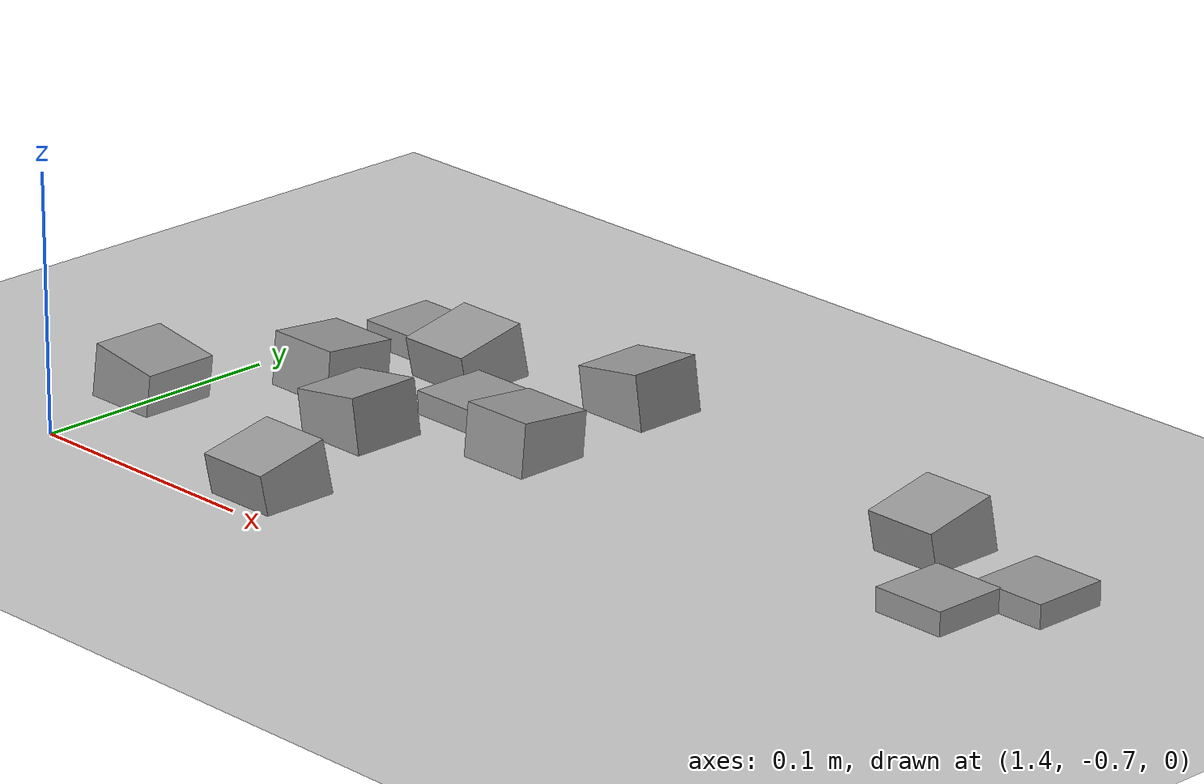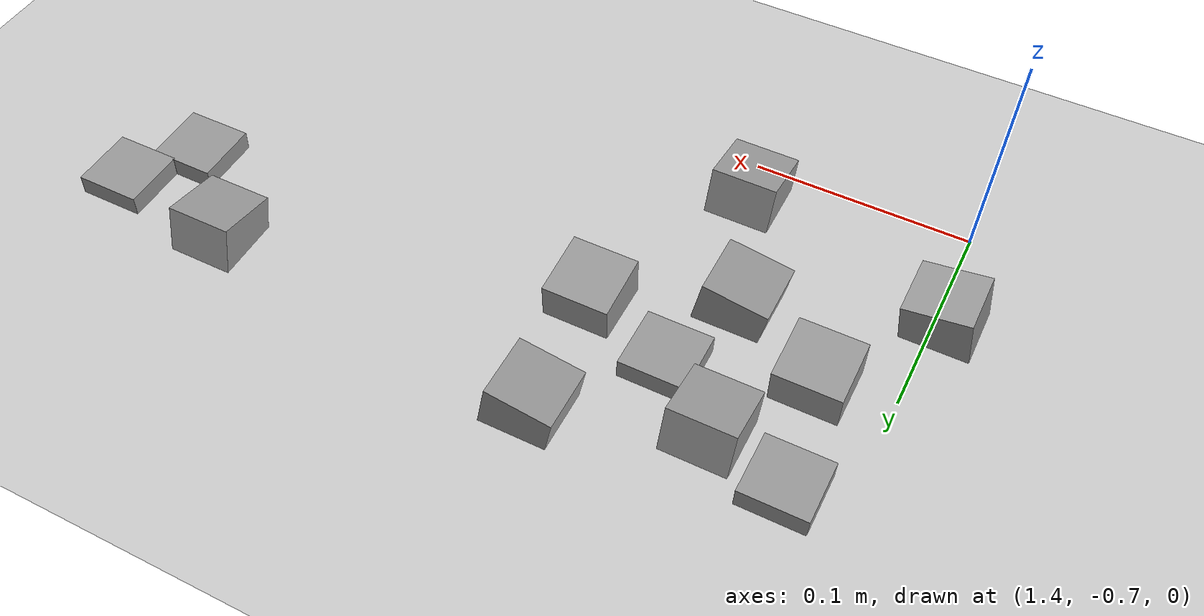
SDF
<sdf version="1.7">
 <world name="default">
  <model name="ground_plane">
   <static>1</static>
   <link name="link">
    <collision name="collision">
     <geometry><plane><normal>0 0 1</normal><size>100 100</size></plane></geometry>
     <surface><friction><ode><mu>100</mu><mu2>50</mu2></ode></friction></surface>
    </collision>
    <visual name="visual">
     <cast_shadows>0</cast_shadows>
     <geometry><plane><normal>0 0 1</normal><size>100 100</size></plane></geometry>
     <material>
      <script><uri>file://media/materials/scripts/gazebo.material</uri><name>Gazebo/Grey</name></script>
     </material>
    </visual>
   </link>
  </model>
  <model name="stone_road_1">
   <link name="link_0_clone_12">
    <inertial>
     <mass>1</mass>
     <inertia>
      <ixx>0.166667</ixx>
      <ixy>0</ixy>
      <ixz>0</ixz>
      <iyy>0.166667</iyy>
      <iyz>0</iyz>
      <izz>0.166667</izz>
     </inertia>
    </inertial>
    <pose>0.142624 -0.262715 0.003778 0.2 -0 0</pose>
    <kinematic>1</kinematic>
    <visual name="visual">
     <geometry><box><size>0.03 0.03 0.03</size></box></geometry>
     <material>
      <lighting>1</lighting>
      <script><uri>file://media/materials/scripts/gazebo.material</uri><name>Gazebo/Grey</name></script>
      <shader type="pixel"><normal_map>__default__</normal_map></shader>
      <ambient>0.3 0.3 0.3 1</ambient>
      <diffuse>0.7 0.7 0.7 1</diffuse>
      <specular>0.01 0.01 0.01 1</specular>
      <emissive>0 0 0 1</emissive>
     </material>
    </visual>
    <collision name="collision">
     <geometry><box><size>0.03 0.03 0.03</size></box></geometry>
     <surface>
      <friction>
       <ode><mu>1</mu><mu2>1</mu2><fdir1>0 0 0</fdir1><slip1>0</slip1><slip2>0</slip2></ode>
       <torsional>
        <coefficient>1</coefficient>
        <patch_radius>0</patch_radius>
        <surface_radius>0</surface_radius>
        <use_patch_radius>1</use_patch_radius>
        <ode><slip>0</slip></ode>
       </torsional>
      </friction>
      <bounce><restitution_coefficient>0</restitution_coefficient><threshold>1e+06</threshold></bounce>
      <contact>
       <collide_without_contact>0</collide_without_contact>
       <collide_without_contact_bitmask>1</collide_without_contact_bitmask>
       <collide_bitmask>1</collide_bitmask>
       <ode>
        <soft_cfm>0</soft_cfm>
        <soft_erp>0.2</soft_erp>
        <kp>1e+13</kp>
        <kd>1</kd>
        <max_vel>0.01</max_vel>
        <min_depth>0</min_depth>
       </ode>
       <bullet>
        <split_impulse>1</split_impulse>
        <split_impulse_penetration_threshold>-0.01</split_impulse_penetration_threshold>
        <soft_cfm>0</soft_cfm>
        <soft_erp>0.2</soft_erp>
        <kp>1e+13</kp>
        <kd>1</kd>
       </bullet>
      </contact>
     </surface>
    </collision>
   </link>
   <link name="link_0_clone_13">
    <inertial>
     <mass>1</mass>
     <inertia>
      <ixx>0.166667</ixx>
      <ixy>0</ixy>
      <ixz>0</ixz>
      <iyy>0.166667</iyy>
      <iyz>0</iyz>
      <izz>0.166667</izz>
     </inertia>
    </inertial>
    <pose>0.107601 -0.134881 0.003778 0.2 -0 0</pose>
    <kinematic>1</kinematic>
    <visual name="visual">
     <geometry><box><size>0.03 0.03 0.03</size></box></geometry>
     <material>
      <lighting>1</lighting>
      <script><uri>file://media/materials/scripts/gazebo.material</uri><name>Gazebo/Grey</name></script>
      <shader type="pixel"><normal_map>__default__</normal_map></shader>
      <ambient>0.3 0.3 0.3 1</ambient>
      <diffuse>0.7 0.7 0.7 1</diffuse>
      <specular>0.01 0.01 0.01 1</specular>
      <emissive>0 0 0 1</emissive>
     </material>
    </visual>
    <collision name="collision">
     <geometry><box><size>0.03 0.03 0.03</size></box></geometry>
     <surface>
      <friction>
       <ode><mu>1</mu><mu2>1</mu2><fdir1>0 0 0</fdir1><slip1>0</slip1><slip2>0</slip2></ode>
       <torsional>
        <coefficient>1</coefficient>
        <patch_radius>0</patch_radius>
        <surface_radius>0</surface_radius>
        <use_patch_radius>1</use_patch_radius>
        <ode><slip>0</slip></ode>
       </torsional>
      </friction>
      <bounce><restitution_coefficient>0</restitution_coefficient><threshold>1e+06</threshold></bounce>
      <contact>
       <collide_without_contact>0</collide_without_contact>
       <collide_without_contact_bitmask>1</collide_without_contact_bitmask>
       <collide_bitmask>1</collide_bitmask>
       <ode>
        <soft_cfm>0</soft_cfm>
        <soft_erp>0.2</soft_erp>
        <kp>1e+13</kp>
        <kd>1</kd>
        <max_vel>0.01</max_vel>
        <min_depth>0</min_depth>
       </ode>
       <bullet>
        <split_impulse>1</split_impulse>
        <split_impulse_penetration_threshold>-0.01</split_impulse_penetration_threshold>
        <soft_cfm>0</soft_cfm>
        <soft_erp>0.2</soft_erp>
        <kp>1e+13</kp>
        <kd>1</kd>
       </bullet>
      </contact>
     </surface>
    </collision>
   </link>
   <link name="link_0_clone_2_clone_2_clone_13_clone_clone_11">
    <inertial>
     <mass>1</mass>
     <inertia>
      <ixx>0.166667</ixx>
      <ixy>0</ixy>
      <ixz>0</ixz>
      <iyy>0.166667</iyy>
      <iyz>0</iyz>
      <izz>0.166667</izz>
     </inertia>
    </inertial>
    <pose>0.178889 -0.173779 0.003778 -0.1 0 0</pose>
    <kinematic>1</kinematic>
    <visual name="visual">
     <geometry><box><size>0.03 0.03 0.03</size></box></geometry>
     <material>
      <lighting>1</lighting>
      <script><uri>file://media/materials/scripts/gazebo.material</uri><name>Gazebo/Grey</name></script>
      <shader type="pixel"><normal_map>__default__</normal_map></shader>
      <ambient>0.3 0.3 0.3 1</ambient>
      <diffuse>0.7 0.7 0.7 1</diffuse>
      <specular>0.01 0.01 0.01 1</specular>
      <emissive>0 0 0 1</emissive>
     </material>
    </visual>
    <collision name="collision">
     <geometry><box><size>0.03 0.03 0.03</size></box></geometry>
     <surface>
      <friction>
       <ode><mu>1</mu><mu2>1</mu2><fdir1>0 0 0</fdir1><slip1>0</slip1><slip2>0</slip2></ode>
       <torsional>
        <coefficient>1</coefficient>
        <patch_radius>0</patch_radius>
        <surface_radius>0</surface_radius>
        <use_patch_radius>1</use_patch_radius>
        <ode><slip>0</slip></ode>
       </torsional>
      </friction>
      <bounce><restitution_coefficient>0</restitution_coefficient><threshold>1e+06</threshold></bounce>
      <contact>
       <collide_without_contact>0</collide_without_contact>
       <collide_without_contact_bitmask>1</collide_without_contact_bitmask>
       <collide_bitmask>1</collide_bitmask>
       <ode>
        <soft_cfm>0</soft_cfm>
        <soft_erp>0.2</soft_erp>
        <kp>1e+13</kp>
        <kd>1</kd>
        <max_vel>0.01</max_vel>
        <min_depth>0</min_depth>
       </ode>
       <bullet>
        <split_impulse>1</split_impulse>
        <split_impulse_penetration_threshold>-0.01</split_impulse_penetration_threshold>
        <soft_cfm>0</soft_cfm>
        <soft_erp>0.2</soft_erp>
        <kp>1e+13</kp>
        <kd>1</kd>
       </bullet>
      </contact>
     </surface>
    </collision>
   </link>
   <link name="link_0_clone_2_clone_2_clone_13_clone_clone_12">
    <inertial>
     <mass>1</mass>
     <inertia>
      <ixx>0.166667</ixx>
      <ixy>0</ixy>
      <ixz>0</ixz>
      <iyy>0.166667</iyy>
      <iyz>0</iyz>
      <izz>0.166667</izz>
     </inertia>
    </inertial>
    <pose>0.078701 -0.177208 0.003778 -0.1 0 0</pose>
    <kinematic>1</kinematic>
    <visual name="visual">
     <geometry><box><size>0.03 0.03 0.03</size></box></geometry>
     <material>
      <lighting>1</lighting>
      <script><uri>file://media/materials/scripts/gazebo.material</uri><name>Gazebo/Grey</name></script>
      <shader type="pixel"><normal_map>__default__</normal_map></shader>
      <ambient>0.3 0.3 0.3 1</ambient>
      <diffuse>0.7 0.7 0.7 1</diffuse>
      <specular>0.01 0.01 0.01 1</specular>
      <emissive>0 0 0 1</emissive>
     </material>
    </visual>
    <collision name="collision">
     <geometry><box><size>0.03 0.03 0.03</size></box></geometry>
     <surface>
      <friction>
       <ode><mu>1</mu><mu2>1</mu2><fdir1>0 0 0</fdir1><slip1>0</slip1><slip2>0</slip2></ode>
       <torsional>
        <coefficient>1</coefficient>
        <patch_radius>0</patch_radius>
        <surface_radius>0</surface_radius>
        <use_patch_radius>1</use_patch_radius>
        <ode><slip>0</slip></ode>
       </torsional>
      </friction>
      <bounce><restitution_coefficient>0</restitution_coefficient><threshold>1e+06</threshold></bounce>
      <contact>
       <collide_without_contact>0</collide_without_contact>
       <collide_without_contact_bitmask>1</collide_without_contact_bitmask>
       <collide_bitmask>1</collide_bitmask>
       <ode>
        <soft_cfm>0</soft_cfm>
        <soft_erp>0.2</soft_erp>
        <kp>1e+13</kp>
        <kd>1</kd>
        <max_vel>0.01</max_vel>
        <min_depth>0</min_depth>
       </ode>
       <bullet>
        <split_impulse>1</split_impulse>
        <split_impulse_penetration_threshold>-0.01</split_impulse_penetration_threshold>
        <soft_cfm>0</soft_cfm>
        <soft_erp>0.2</soft_erp>
        <kp>1e+13</kp>
        <kd>1</kd>
       </bullet>
      </contact>
     </surface>
    </collision>
   </link>
   <link name="link_0_clone_2_clone_2_clone_13_clone_clone_16_clone_16">
    <inertial>
     <mass>1</mass>
     <inertia>
      <ixx>0.166667</ixx>
      <ixy>0</ixy>
      <ixz>0</ixz>
      <iyy>0.166667</iyy>
      <iyz>0</iyz>
      <izz>0.166667</izz>
     </inertia>
    </inertial>
    <pose>0.071475 -0.124425 -0.006222 0 -0 0</pose>
    <kinematic>1</kinematic>
    <visual name="visual">
     <geometry><box><size>0.03 0.03 0.03</size></box></geometry>
     <material>
      <lighting>1</lighting>
      <script><uri>file://media/materials/scripts/gazebo.material</uri><name>Gazebo/Grey</name></script>
      <shader type="pixel"><normal_map>__default__</normal_map></shader>
      <ambient>0.3 0.3 0.3 1</ambient>
      <diffuse>0.7 0.7 0.7 1</diffuse>
      <specular>0.01 0.01 0.01 1</specular>
      <emissive>0 0 0 1</emissive>
     </material>
    </visual>
    <collision name="collision">
     <geometry><box><size>0.03 0.03 0.03</size></box></geometry>
     <surface>
      <friction>
       <ode><mu>1</mu><mu2>1</mu2><fdir1>0 0 0</fdir1><slip1>0</slip1><slip2>0</slip2></ode>
       <torsional>
        <coefficient>1</coefficient>
        <patch_radius>0</patch_radius>
        <surface_radius>0</surface_radius>
        <use_patch_radius>1</use_patch_radius>
        <ode><slip>0</slip></ode>
       </torsional>
      </friction>
      <bounce><restitution_coefficient>0</restitution_coefficient><threshold>1e+06</threshold></bounce>
      <contact>
       <collide_without_contact>0</collide_without_contact>
       <collide_without_contact_bitmask>1</collide_without_contact_bitmask>
       <collide_bitmask>1</collide_bitmask>
       <ode>
        <soft_cfm>0</soft_cfm>
        <soft_erp>0.2</soft_erp>
        <kp>1e+13</kp>
        <kd>1</kd>
        <max_vel>0.01</max_vel>
        <min_depth>0</min_depth>
       </ode>
       <bullet>
        <split_impulse>1</split_impulse>
        <split_impulse_penetration_threshold>-0.01</split_impulse_penetration_threshold>
        <soft_cfm>0</soft_cfm>
        <soft_erp>0.2</soft_erp>
        <kp>1e+13</kp>
        <kd>1</kd>
       </bullet>
      </contact>
     </surface>
    </collision>
   </link>
   <link name="link_0_clone_2_clone_2_clone_13_clone_clone_16_clone_18">
    <inertial>
     <mass>1</mass>
     <inertia>
      <ixx>0.166667</ixx>
      <ixy>0</ixy>
      <ixz>0</ixz>
      <iyy>0.166667</iyy>
      <iyz>0</iyz>
      <izz>0.166667</izz>
     </inertia>
    </inertial>
    <pose>0.137197 -0.158693 -0.006222 0 -0 0</pose>
    <kinematic>1</kinematic>
    <visual name="visual">
     <geometry><box><size>0.03 0.03 0.03</size></box></geometry>
     <material>
      <lighting>1</lighting>
      <script><uri>file://media/materials/scripts/gazebo.material</uri><name>Gazebo/Grey</name></script>
      <shader type="pixel"><normal_map>__default__</normal_map></shader>
      <ambient>0.3 0.3 0.3 1</ambient>
      <diffuse>0.7 0.7 0.7 1</diffuse>
      <specular>0.01 0.01 0.01 1</specular>
      <emissive>0 0 0 1</emissive>
     </material>
    </visual>
    <collision name="collision">
     <geometry><box><size>0.03 0.03 0.03</size></box></geometry>
     <surface>
      <friction>
       <ode><mu>1</mu><mu2>1</mu2><fdir1>0 0 0</fdir1><slip1>0</slip1><slip2>0</slip2></ode>
       <torsional>
        <coefficient>1</coefficient>
        <patch_radius>0</patch_radius>
        <surface_radius>0</surface_radius>
        <use_patch_radius>1</use_patch_radius>
        <ode><slip>0</slip></ode>
       </torsional>
      </friction>
      <bounce><restitution_coefficient>0</restitution_coefficient><threshold>1e+06</threshold></bounce>
      <contact>
       <collide_without_contact>0</collide_without_contact>
       <collide_without_contact_bitmask>1</collide_without_contact_bitmask>
       <collide_bitmask>1</collide_bitmask>
       <ode>
        <soft_cfm>0</soft_cfm>
        <soft_erp>0.2</soft_erp>
        <kp>1e+13</kp>
        <kd>1</kd>
        <max_vel>0.01</max_vel>
        <min_depth>0</min_depth>
       </ode>
       <bullet>
        <split_impulse>1</split_impulse>
        <split_impulse_penetration_threshold>-0.01</split_impulse_penetration_threshold>
        <soft_cfm>0</soft_cfm>
        <soft_erp>0.2</soft_erp>
        <kp>1e+13</kp>
        <kd>1</kd>
       </bullet>
      </contact>
     </surface>
    </collision>
   </link>
   <link name="link_0_clone_2_clone_2_clone_7">
    <inertial>
     <mass>1</mass>
     <inertia>
      <ixx>0.166667</ixx>
      <ixy>0</ixy>
      <ixz>0</ixz>
      <iyy>0.166667</iyy>
      <iyz>0</iyz>
      <izz>0.166667</izz>
     </inertia>
    </inertial>
    <pose>0.175499 -0.112442 0.003778 0 -0.15 0</pose>
    <kinematic>1</kinematic>
    <visual name="visual">
     <geometry><box><size>0.03 0.03 0.03</size></box></geometry>
     <material>
      <lighting>1</lighting>
      <script><uri>file://media/materials/scripts/gazebo.material</uri><name>Gazebo/Grey</name></script>
      <shader type="pixel"><normal_map>__default__</normal_map></shader>
      <ambient>0.3 0.3 0.3 1</ambient>
      <diffuse>0.7 0.7 0.7 1</diffuse>
      <specular>0.01 0.01 0.01 1</specular>
      <emissive>0 0 0 1</emissive>
     </material>
    </visual>
    <collision name="collision">
     <geometry><box><size>0.03 0.03 0.03</size></box></geometry>
     <surface>
      <friction>
       <ode><mu>1</mu><mu2>1</mu2><fdir1>0 0 0</fdir1><slip1>0</slip1><slip2>0</slip2></ode>
       <torsional>
        <coefficient>1</coefficient>
        <patch_radius>0</patch_radius>
        <surface_radius>0</surface_radius>
        <use_patch_radius>1</use_patch_radius>
        <ode><slip>0</slip></ode>
       </torsional>
      </friction>
      <bounce><restitution_coefficient>0</restitution_coefficient><threshold>1e+06</threshold></bounce>
      <contact>
       <collide_without_contact>0</collide_without_contact>
       <collide_without_contact_bitmask>1</collide_without_contact_bitmask>
       <collide_bitmask>1</collide_bitmask>
       <ode>
        <soft_cfm>0</soft_cfm>
        <soft_erp>0.2</soft_erp>
        <kp>1e+13</kp>
        <kd>1</kd>
        <max_vel>0.01</max_vel>
        <min_depth>0</min_depth>
       </ode>
       <bullet>
        <split_impulse>1</split_impulse>
        <split_impulse_penetration_threshold>-0.01</split_impulse_penetration_threshold>
        <soft_cfm>0</soft_cfm>
        <soft_erp>0.2</soft_erp>
        <kp>1e+13</kp>
        <kd>1</kd>
       </bullet>
      </contact>
     </surface>
    </collision>
   </link>
   <link name="link_0_clone_2_clone_2_clone_8">
    <inertial>
     <mass>1</mass>
     <inertia>
      <ixx>0.166667</ixx>
      <ixy>0</ixy>
      <ixz>0</ixz>
      <iyy>0.166667</iyy>
      <iyz>0</iyz>
      <izz>0.166667</izz>
     </inertia>
    </inertial>
    <pose>0.122141 -0.201696 0.003778 0 -0.15 0</pose>
    <kinematic>1</kinematic>
    <visual name="visual">
     <geometry><box><size>0.03 0.03 0.03</size></box></geometry>
     <material>
      <lighting>1</lighting>
      <script><uri>file://media/materials/scripts/gazebo.material</uri><name>Gazebo/Grey</name></script>
      <shader type="pixel"><normal_map>__default__</normal_map></shader>
      <ambient>0.3 0.3 0.3 1</ambient>
      <diffuse>0.7 0.7 0.7 1</diffuse>
      <specular>0.01 0.01 0.01 1</specular>
      <emissive>0 0 0 1</emissive>
     </material>
    </visual>
    <collision name="collision">
     <geometry><box><size>0.03 0.03 0.03</size></box></geometry>
     <surface>
      <friction>
       <ode><mu>1</mu><mu2>1</mu2><fdir1>0 0 0</fdir1><slip1>0</slip1><slip2>0</slip2></ode>
       <torsional>
        <coefficient>1</coefficient>
        <patch_radius>0</patch_radius>
        <surface_radius>0</surface_radius>
        <use_patch_radius>1</use_patch_radius>
        <ode><slip>0</slip></ode>
       </torsional>
      </friction>
      <bounce><restitution_coefficient>0</restitution_coefficient><threshold>1e+06</threshold></bounce>
      <contact>
       <collide_without_contact>0</collide_without_contact>
       <collide_without_contact_bitmask>1</collide_without_contact_bitmask>
       <collide_bitmask>1</collide_bitmask>
       <ode>
        <soft_cfm>0</soft_cfm>
        <soft_erp>0.2</soft_erp>
        <kp>1e+13</kp>
        <kd>1</kd>
        <max_vel>0.01</max_vel>
        <min_depth>0</min_depth>
       </ode>
       <bullet>
        <split_impulse>1</split_impulse>
        <split_impulse_penetration_threshold>-0.01</split_impulse_penetration_threshold>
        <soft_cfm>0</soft_cfm>
        <soft_erp>0.2</soft_erp>
        <kp>1e+13</kp>
        <kd>1</kd>
       </bullet>
      </contact>
     </surface>
    </collision>
   </link>
   <link name="link_0_clone_2_clone_7">
    <inertial>
     <mass>1</mass>
     <inertia>
      <ixx>0.166667</ixx>
      <ixy>0</ixy>
      <ixz>0</ixz>
      <iyy>0.166667</iyy>
      <iyz>0</iyz>
      <izz>0.166667</izz>
     </inertia>
    </inertial>
    <pose>0.04255 -0.232691 0.003778 0 0.15 0</pose>
    <kinematic>1</kinematic>
    <visual name="visual">
     <geometry><box><size>0.03 0.03 0.03</size></box></geometry>
     <material>
      <lighting>1</lighting>
      <script><uri>file://media/materials/scripts/gazebo.material</uri><name>Gazebo/Grey</name></script>
      <shader type="pixel"><normal_map>__default__</normal_map></shader>
      <ambient>0.3 0.3 0.3 1</ambient>
      <diffuse>0.7 0.7 0.7 1</diffuse>
      <specular>0.01 0.01 0.01 1</specular>
      <emissive>0 0 0 1</emissive>
     </material>
    </visual>
    <collision name="collision">
     <geometry><box><size>0.03 0.03 0.03</size></box></geometry>
     <surface>
      <friction>
       <ode><mu>1</mu><mu2>1</mu2><fdir1>0 0 0</fdir1><slip1>0</slip1><slip2>0</slip2></ode>
       <torsional>
        <coefficient>1</coefficient>
        <patch_radius>0</patch_radius>
        <surface_radius>0</surface_radius>
        <use_patch_radius>1</use_patch_radius>
        <ode><slip>0</slip></ode>
       </torsional>
      </friction>
      <bounce><restitution_coefficient>0</restitution_coefficient><threshold>1e+06</threshold></bounce>
      <contact>
       <collide_without_contact>0</collide_without_contact>
       <collide_without_contact_bitmask>1</collide_without_contact_bitmask>
       <collide_bitmask>1</collide_bitmask>
       <ode>
        <soft_cfm>0</soft_cfm>
        <soft_erp>0.2</soft_erp>
        <kp>1e+13</kp>
        <kd>1</kd>
        <max_vel>0.01</max_vel>
        <min_depth>0</min_depth>
       </ode>
       <bullet>
        <split_impulse>1</split_impulse>
        <split_impulse_penetration_threshold>-0.01</split_impulse_penetration_threshold>
        <soft_cfm>0</soft_cfm>
        <soft_erp>0.2</soft_erp>
        <kp>1e+13</kp>
        <kd>1</kd>
       </bullet>
      </contact>
     </surface>
    </collision>
   </link>
   <static>0</static>
   <pose>1.35395 -0.41641 -0 0 -0 0</pose>
  </model>
  <model name="stone_road_2">
   <link name="link_0_clone_2_clone_2_clone_13_clone_clone_16_clone_11">
    <inertial>
     <mass>1</mass>
     <inertia>
      <ixx>0.166667</ixx>
      <ixy>0</ixy>
      <ixz>0</ixz>
      <iyy>0.166667</iyy>
      <iyz>0</iyz>
      <izz>0.166667</izz>
     </inertia>
    </inertial>
    <pose>-0.141844 -0.066911 -0.006222 0 -0 0</pose>
    <kinematic>1</kinematic>
    <visual name="visual">
     <geometry><box><size>0.03 0.03 0.03</size></box></geometry>
     <material>
      <lighting>1</lighting>
      <script><uri>file://media/materials/scripts/gazebo.material</uri><name>Gazebo/Grey</name></script>
      <shader type="pixel"><normal_map>__default__</normal_map></shader>
      <ambient>0.3 0.3 0.3 1</ambient>
      <diffuse>0.7 0.7 0.7 1</diffuse>
      <specular>0.01 0.01 0.01 1</specular>
      <emissive>0 0 0 1</emissive>
     </material>
    </visual>
    <collision name="collision">
     <geometry><box><size>0.03 0.03 0.03</size></box></geometry>
     <surface>
      <friction>
       <ode><mu>1</mu><mu2>1</mu2><fdir1>0 0 0</fdir1><slip1>0</slip1><slip2>0</slip2></ode>
       <torsional>
        <coefficient>1</coefficient>
        <patch_radius>0</patch_radius>
        <surface_radius>0</surface_radius>
        <use_patch_radius>1</use_patch_radius>
        <ode><slip>0</slip></ode>
       </torsional>
      </friction>
      <bounce><restitution_coefficient>0</restitution_coefficient><threshold>1e+06</threshold></bounce>
      <contact>
       <collide_without_contact>0</collide_without_contact>
       <collide_without_contact_bitmask>1</collide_without_contact_bitmask>
       <collide_bitmask>1</collide_bitmask>
       <ode>
        <soft_cfm>0</soft_cfm>
        <soft_erp>0.2</soft_erp>
        <kp>1e+13</kp>
        <kd>1</kd>
        <max_vel>0.01</max_vel>
        <min_depth>0</min_depth>
       </ode>
       <bullet>
        <split_impulse>1</split_impulse>
        <split_impulse_penetration_threshold>-0.01</split_impulse_penetration_threshold>
        <soft_cfm>0</soft_cfm>
        <soft_erp>0.2</soft_erp>
        <kp>1e+13</kp>
        <kd>1</kd>
       </bullet>
      </contact>
     </surface>
    </collision>
   </link>
   <link name="link_0_clone_2_clone_2_clone_13_clone_clone_16_clone_30">
    <inertial>
     <mass>1</mass>
     <inertia>
      <ixx>0.166667</ixx>
      <ixy>0</ixy>
      <ixz>0</ixz>
      <iyy>0.166667</iyy>
      <iyz>0</iyz>
      <izz>0.166667</izz>
     </inertia>
    </inertial>
    <pose>-0.160879 -0.095951 -0.006222 0 -0 0</pose>
    <kinematic>1</kinematic>
    <visual name="visual">
     <geometry><box><size>0.03 0.03 0.03</size></box></geometry>
     <material>
      <lighting>1</lighting>
      <script><uri>file://media/materials/scripts/gazebo.material</uri><name>Gazebo/Grey</name></script>
      <shader type="pixel"><normal_map>__default__</normal_map></shader>
      <ambient>0.3 0.3 0.3 1</ambient>
      <diffuse>0.7 0.7 0.7 1</diffuse>
      <specular>0.01 0.01 0.01 1</specular>
      <emissive>0 0 0 1</emissive>
     </material>
    </visual>
    <collision name="collision">
     <geometry><box><size>0.03 0.03 0.03</size></box></geometry>
     <surface>
      <friction>
       <ode><mu>1</mu><mu2>1</mu2><fdir1>0 0 0</fdir1><slip1>0</slip1><slip2>0</slip2></ode>
       <torsional>
        <coefficient>1</coefficient>
        <patch_radius>0</patch_radius>
        <surface_radius>0</surface_radius>
        <use_patch_radius>1</use_patch_radius>
        <ode><slip>0</slip></ode>
       </torsional>
      </friction>
      <bounce><restitution_coefficient>0</restitution_coefficient><threshold>1e+06</threshold></bounce>
      <contact>
       <collide_without_contact>0</collide_without_contact>
       <collide_without_contact_bitmask>1</collide_without_contact_bitmask>
       <collide_bitmask>1</collide_bitmask>
       <ode>
        <soft_cfm>0</soft_cfm>
        <soft_erp>0.2</soft_erp>
        <kp>1e+13</kp>
        <kd>1</kd>
        <max_vel>0.01</max_vel>
        <min_depth>0</min_depth>
       </ode>
       <bullet>
        <split_impulse>1</split_impulse>
        <split_impulse_penetration_threshold>-0.01</split_impulse_penetration_threshold>
        <soft_cfm>0</soft_cfm>
        <soft_erp>0.2</soft_erp>
        <kp>1e+13</kp>
        <kd>1</kd>
       </bullet>
      </contact>
     </surface>
    </collision>
   </link>
   <link name="link_0_clone_6">
    <inertial>
     <mass>1</mass>
     <inertia>
      <ixx>0.166667</ixx>
      <ixy>0</ixy>
      <ixz>0</ixz>
      <iyy>0.166667</iyy>
      <iyz>0</iyz>
      <izz>0.166667</izz>
     </inertia>
    </inertial>
    <pose>-0.198423 -0.058498 0.003778 0.2 -0 0</pose>
    <kinematic>1</kinematic>
    <visual name="visual">
     <geometry><box><size>0.03 0.03 0.03</size></box></geometry>
     <material>
      <lighting>1</lighting>
      <script><uri>file://media/materials/scripts/gazebo.material</uri><name>Gazebo/Grey</name></script>
      <shader type="pixel"><normal_map>__default__</normal_map></shader>
      <ambient>0.3 0.3 0.3 1</ambient>
      <diffuse>0.7 0.7 0.7 1</diffuse>
      <specular>0.01 0.01 0.01 1</specular>
      <emissive>0 0 0 1</emissive>
     </material>
    </visual>
    <collision name="collision">
     <geometry><box><size>0.03 0.03 0.03</size></box></geometry>
     <surface>
      <friction>
       <ode><mu>1</mu><mu2>1</mu2><fdir1>0 0 0</fdir1><slip1>0</slip1><slip2>0</slip2></ode>
       <torsional>
        <coefficient>1</coefficient>
        <patch_radius>0</patch_radius>
        <surface_radius>0</surface_radius>
        <use_patch_radius>1</use_patch_radius>
        <ode><slip>0</slip></ode>
       </torsional>
      </friction>
      <bounce><restitution_coefficient>0</restitution_coefficient><threshold>1e+06</threshold></bounce>
      <contact>
       <collide_without_contact>0</collide_without_contact>
       <collide_without_contact_bitmask>1</collide_without_contact_bitmask>
       <collide_bitmask>1</collide_bitmask>
       <ode>
        <soft_cfm>0</soft_cfm>
        <soft_erp>0.2</soft_erp>
        <kp>1e+13</kp>
        <kd>1</kd>
        <max_vel>0.01</max_vel>
        <min_depth>0</min_depth>
       </ode>
       <bullet>
        <split_impulse>1</split_impulse>
        <split_impulse_penetration_threshold>-0.01</split_impulse_penetration_threshold>
        <soft_cfm>0</soft_cfm>
        <soft_erp>0.2</soft_erp>
        <kp>1e+13</kp>
        <kd>1</kd>
       </bullet>
      </contact>
     </surface>
    </collision>
   </link>
   <static>0</static>
   <pose>1.89226 -0.488312 -0 0 -0 0</pose>
  </model>
 </world>
</sdf>
